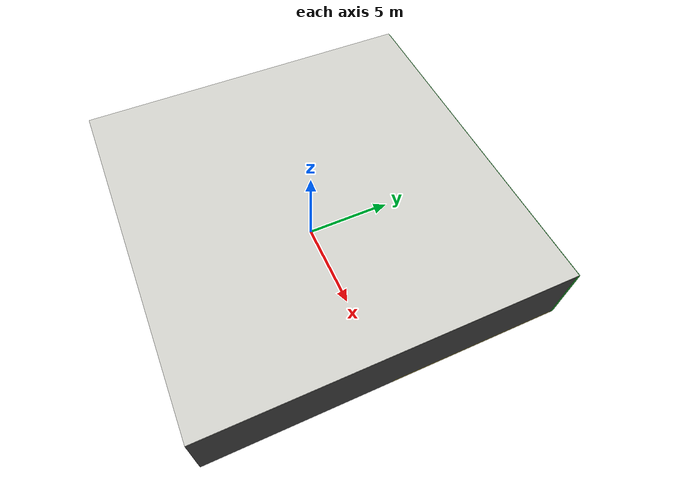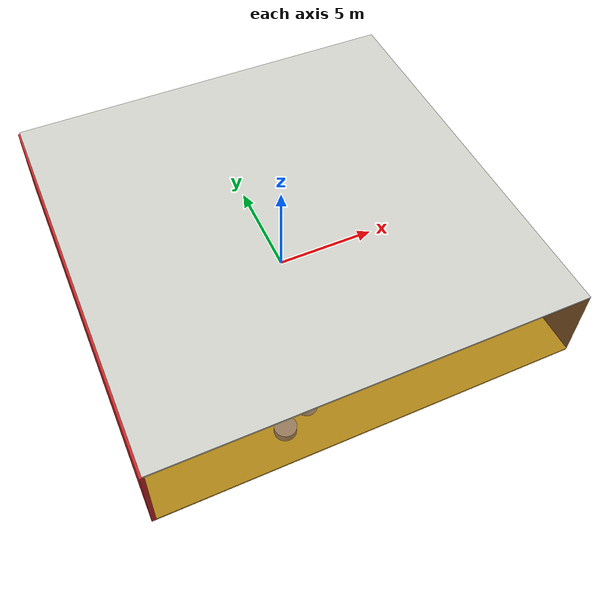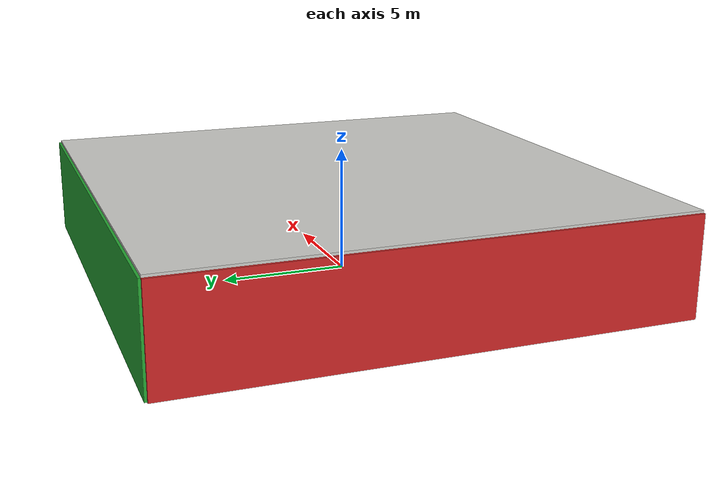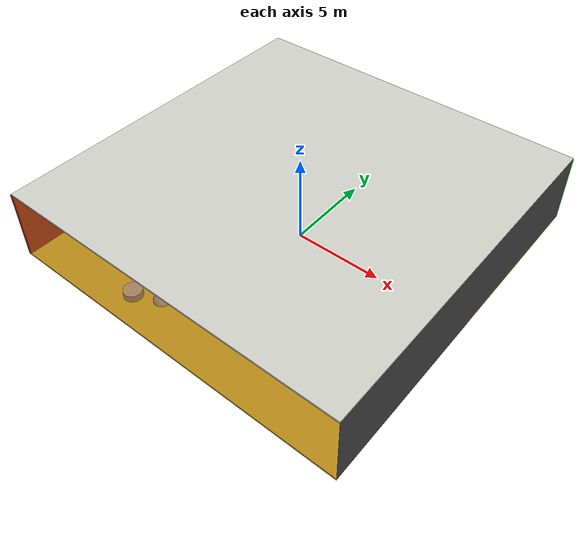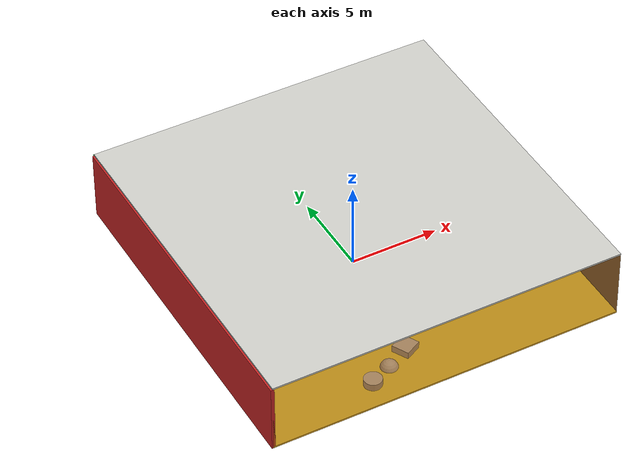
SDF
<sdf version="1.4">
 <world name="default">
  <physics type="ode">
   <max_step_size>0.001</max_step_size>
   <real_time_factor>1</real_time_factor>
   <real_time_update_rate>1000</real_time_update_rate>
   <gravity>0 0 -9.8</gravity>
  </physics>
  <scene><ambient>0.4 0.4 0.4 1</ambient><background>0.7 0.7 0.7 1</background><shadows>1</shadows></scene>
  <model name="Surrounding">
   <static>1</static>
   <link name="Ceiling">
    <collision name="Ceiling_Collision"><geometry><box><size>20 20 0.1</size></box></geometry></collision>
    <visual name="Ceiling_Visual">
     <geometry><box><size>20 20 0.1</size></box></geometry>
     <material>
      <script><uri>file://media/materials/scripts/gazebo.material</uri><name>Gazebo/CeilingTiled</name></script>
     </material>
    </visual>
    <pose>0 0 4.05 0 0 0</pose>
   </link>
   <link name="Wall_South">
    <collision name="Wall_South_Collision">
     <geometry><box><size>20 0 4</size></box></geometry>
     <pose>0 0 2 0 -0 0</pose>
    </collision>
    <visual name="Wall_South_Visual">
     <pose>0 0 2 0 -0 0</pose>
     <geometry><box><size>20 0 4</size></box></geometry>
     <material>
      <script>
       <uri>file://media/materials/scripts/gazebo.material</uri>
       <name>Gazebo/OrangeTransparent</name>
      </script>
     </material>
    </visual>
    <velocity_decay><linear>0</linear><angular>0</angular></velocity_decay>
    <pose>0 -10 0 0 -0 0</pose>
   </link>
   <link name="Wall_East">
    <collision name="Wall_21_Collision">
     <geometry><box><size>20 0 4</size></box></geometry>
     <pose>0 0 2 0 -0 0</pose>
    </collision>
    <visual name="Wall_21_Visual">
     <pose>0 0 2 0 -0 0</pose>
     <geometry><box><size>20 0 4</size></box></geometry>
     <material>
      <script><uri>file://media/materials/scripts/gazebo.material</uri><name>Gazebo/DarkGrey</name></script>
     </material>
    </visual>
    <velocity_decay><linear>0</linear><angular>0</angular></velocity_decay>
    <pose>10 0 0 0 -0 1.5708</pose>
   </link>
   <link name="Wall_North">
    <collision name="Wall_22_Collision">
     <geometry><box><size>20 0.2 4</size></box></geometry>
     <pose>0 0 2 0 -0 0</pose>
    </collision>
    <visual name="Wall_22_Visual">
     <pose>0 0 2 0 -0 0</pose>
     <geometry><box><size>20 0.2 4</size></box></geometry>
     <material>
      <script><uri>file://media/materials/scripts/gazebo.material</uri><name>Gazebo/Green</name></script>
     </material>
    </visual>
    <velocity_decay><linear>0</linear><angular>0</angular></velocity_decay>
    <pose>0 10 0 0 -0 0</pose>
   </link>
   <link name="Wall_West">
    <collision name="Wall_23_Collision">
     <geometry><box><size>20 0.2 4</size></box></geometry>
     <pose>0 0 2 0 -0 0</pose>
    </collision>
    <visual name="Wall_23_Visual">
     <pose>0 0 2 0 -0 0</pose>
     <geometry><box><size>20 0.2 4</size></box></geometry>
     <material>
      <script><uri>file://media/materials/scripts/gazebo.material</uri><name>Gazebo/RedBright</name></script>
     </material>
    </visual>
    <velocity_decay><linear>0</linear><angular>0</angular></velocity_decay>
    <pose>-10 0 0 0 0 -1.5708</pose>
   </link>
   <link name="Ground_link">
    <collision name="collision">
     <pose>0 0 .05 0 -0 0</pose>
     <geometry><box><size>20 20 0.1</size></box></geometry>
    </collision>
    <visual name="visual">
     <pose>0 0 .05 0 -0 0</pose>
     <geometry><box><size>20 20 0.1</size></box></geometry>
     <material>
      <script><uri>file://media/materials/scripts/gazebo.material</uri><name>Gazebo/ZincYellow</name></script>
     </material>
    </visual>
   </link>
   <static>1</static>
  </model>
  <spherical_coordinates>
   <surface_model>EARTH_WGS84</surface_model>
   <latitude_deg>0</latitude_deg>
   <longitude_deg>0</longitude_deg>
   <elevation>0</elevation>
   <heading_deg>0</heading_deg>
  </spherical_coordinates>
  <light name="lightball_0" type="diffuse">
   <diffuse>0.8 0.8 0.8 1</diffuse>
   <specular>0.2 0.2 0.2 1</specular>
   <attenuation>
    <range>100</range>
    <constant>0.7</constant>
    <linear>0.01</linear>
    <quadratic>0.001</quadratic>
   </attenuation>
   <direction>-0.5 0.1 -0.9</direction>
   <pose>-5.99456758493 9.43456994097 2.44293605843 0 0 0</pose>
  </light>
  <light name="lightball_1" type="diffuse">
   <diffuse>0.8 0.8 0.8 1</diffuse>
   <specular>0.2 0.2 0.2 1</specular>
   <attenuation>
    <range>100</range>
    <constant>0.7</constant>
    <linear>0.01</linear>
    <quadratic>0.001</quadratic>
   </attenuation>
   <direction>-0.5 0.1 -0.9</direction>
   <pose>2.81718145167 -9.98496576436 0.656304960184 0 0 0</pose>
  </light>
  <light name="lightball_2" type="diffuse">
   <diffuse>0.8 0.8 0.8 1</diffuse>
   <specular>0.2 0.2 0.2 1</specular>
   <attenuation>
    <range>100</range>
    <constant>0.7</constant>
    <linear>0.01</linear>
    <quadratic>0.001</quadratic>
   </attenuation>
   <direction>-0.5 0.1 -0.9</direction>
   <pose>6.85782696412 -2.85402570711 3.02795152014 0 0 0</pose>
  </light>
  <light name="lightball_3" type="diffuse">
   <diffuse>0.8 0.8 0.8 1</diffuse>
   <specular>0.2 0.2 0.2 1</specular>
   <attenuation>
    <range>100</range>
    <constant>0.7</constant>
    <linear>0.01</linear>
    <quadratic>0.001</quadratic>
   </attenuation>
   <direction>-0.5 0.1 -0.9</direction>
   <pose>1.79731572561 -9.539536128 1.95278455891 0 0 0</pose>
  </light>
  <light name="lightball_4" type="diffuse">
   <diffuse>0.8 0.8 0.8 1</diffuse>
   <specular>0.2 0.2 0.2 1</specular>
   <attenuation>
    <range>100</range>
    <constant>0.7</constant>
    <linear>0.01</linear>
    <quadratic>0.001</quadratic>
   </attenuation>
   <direction>-0.5 0.1 -0.9</direction>
   <pose>-9.67200077669 0.406630813082 2.610506101 0 0 0</pose>
  </light>
  <light name="lightball_5" type="diffuse">
   <diffuse>0.8 0.8 0.8 1</diffuse>
   <specular>0.2 0.2 0.2 1</specular>
   <attenuation>
    <range>100</range>
    <constant>0.7</constant>
    <linear>0.01</linear>
    <quadratic>0.001</quadratic>
   </attenuation>
   <direction>-0.5 0.1 -0.9</direction>
   <pose>-1.93806512051 -8.91826224066 0.979566521485 0 0 0</pose>
  </light>
  <light name="lightball_6" type="diffuse">
   <diffuse>0.8 0.8 0.8 1</diffuse>
   <specular>0.2 0.2 0.2 1</specular>
   <attenuation>
    <range>100</range>
    <constant>0.7</constant>
    <linear>0.01</linear>
    <quadratic>0.001</quadratic>
   </attenuation>
   <direction>-0.5 0.1 -0.9</direction>
   <pose>8.58724622062 1.69755441171 0.999561064031 0 0 0</pose>
  </light>
  <light name="lightball_7" type="diffuse">
   <diffuse>0.8 0.8 0.8 1</diffuse>
   <specular>0.2 0.2 0.2 1</specular>
   <attenuation>
    <range>100</range>
    <constant>0.7</constant>
    <linear>0.01</linear>
    <quadratic>0.001</quadratic>
   </attenuation>
   <direction>-0.5 0.1 -0.9</direction>
   <pose>4.21960185538 8.93150390956 3.75356831831 0 0 0</pose>
  </light>
  <light name="lightball_8" type="diffuse">
   <diffuse>0.8 0.8 0.8 1</diffuse>
   <specular>0.2 0.2 0.2 1</specular>
   <attenuation>
    <range>100</range>
    <constant>0.7</constant>
    <linear>0.01</linear>
    <quadratic>0.001</quadratic>
   </attenuation>
   <direction>-0.5 0.1 -0.9</direction>
   <pose>-6.08941763753 -2.18074983915 2.21621438269 0 0 0</pose>
  </light>
  <include>
   <uri>model://textured_shapes</uri>
   <pose>-2.25747567076 -7.85969020173 0 0 0 2.05008506911</pose>
  </include>
  <include>
   <uri>model://textured_shapes</uri>
   <pose>-2.60317135384 8.67824397085 0 0 0 1.53476150382</pose>
  </include>
  <include><uri>model://cabinet</uri><pose>2.64745060937 -2.06309692348 0 0 0 2.68390708758</pose></include>
  <include>
   <uri>model://construction_cone</uri>
   <pose>2.69768824346 6.38442214868 0 0 0 1.89850032793</pose>
  </include>
  <include><uri>model://cabinet</uri><pose>3.88142655487 -1.79514980547 0 0 0 1.8340908364</pose></include>
  <include><uri>model://table</uri><pose>7.12144999041 1.95660770383 0 0 0 1.66144183098</pose></include>
  <include>
   <uri>model://robocup_3Dsim_goal</uri>
   <pose>6.53037376682 5.00129815391 0 0 0 2.98307133922</pose>
  </include>
 </world>
</sdf>

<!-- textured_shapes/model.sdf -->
<sdf version="1.6">
  <model name="textured_shapes">
    <pose>0 0 0.5 0 0 0</pose>
    <link name="box">
      <pose>0 -1.5 0 0 0 0</pose>
      <collision name="collision">
        <geometry>
          <box>
            <size>1 1 1</size>
          </box>
        </geometry>
      </collision>
      <visual name="visual">
        <geometry>
          <box>
            <size>1 1 1</size>
          </box>
        </geometry>
        <material>
          <script>
            <uri>model://../model_source/models/textured_shapes/materials/scripts</uri>
            <uri>model://../model_source/models/textured_shapes/materials/textures</uri>
            <name>TexturedShape/Squares</name>
          </script>
        </material>
      </visual>
    </link>
    <link name="sphere">
      <collision name="collision">
        <geometry>
          <sphere>
            <radius>0.5</radius>
          </sphere>
        </geometry>
      </collision>
      <visual name="visual">
        <geometry>
          <sphere>
            <radius>0.5</radius>
          </sphere>
        </geometry>
        <material>
          <script>
            <uri>model://../model_source/models/textured_shapes/materials/scripts</uri>
            <uri>model://../model_source/models/textured_shapes/materials/textures</uri>
            <name>TexturedShape/Squares</name>
          </script>
        </material>
      </visual>
    </link>
    <link name="cylinder">
      <pose>0 1.5 0 0 0 0</pose>
      <collision name="collision">
        <geometry>
          <cylinder>
            <radius>0.5</radius>
            <length>1</length>
          </cylinder>
        </geometry>
      </collision>
      <visual name="visual">
        <geometry>
          <cylinder>
            <radius>0.5</radius>
            <length>1</length>
          </cylinder>
        </geometry>
        <material>
          <script>
            <uri>model://../model_source/models/textured_shapes/materials/scripts</uri>
            <uri>model://../model_source/models/textured_shapes/materials/textures</uri>
            <name>TexturedShape/Squares</name>
          </script>
        </material>
      </visual>
    </link>
  </model>
</sdf>

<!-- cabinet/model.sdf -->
<sdf version="1.5">
  <model name="cabinet">
    <static>true</static>
    <link name="cabinet_bottom_plate">
      <inertial>
        <pose>0 0 -1 0 0 0</pose>
        <inertia>
          <ixx>2.050000</ixx>
          <ixy>0</ixy>
          <ixz>0</ixz>
          <iyy>2.050000</iyy>
          <iyz>0</iyz>
          <izz>2.050000</izz>
        </inertia>
        <mass>25.000000</mass>
      </inertial>
      <collision name="cabinet_bottom_plate_geom">
        <pose>0 0 0.010000 0 0 0</pose>
        <geometry>
          <box>
            <size>0.450000 0.450000 0.020000</size>
          </box>
        </geometry>
      </collision>
      <visual name="cabinet_bottom_plate_geom_visual">
        <pose>0 0 0.010000 0 0 0</pose>
        <geometry>
          <box>
            <size>0.450000 0.450000 0.020000</size>
          </box>
        </geometry>
        <material>
          <script>
            <uri>model://media/materials/scripts/gazebo.material</uri>
            <name>Gazebo/Wood</name>
          </script>
        </material>
      </visual>
      <collision name="cabinet_bottom_plate_geom_cabinet_back_plate">
        <pose>0.235000 0 0.510000 0 0 0</pose>
        <geometry>
          <box>
            <size>0.020000 0.450000 1.020000</size>
          </box>
        </geometry>
      </collision>
      <visual name="cabinet_bottom_plate_geom_cabinet_back_plate_visual">
        <pose>0.235000 0 0.510000 0 0 0</pose>
        <geometry>
          <box>
            <size>0.020000 0.450000 1.020000</size>
          </box>
        </geometry>
        <material>
          <script>
            <uri>model://media/materials/scripts/gazebo.material</uri>
            <name>Gazebo/Wood</name>
          </script>
        </material>
      </visual>
      <collision name="cabinet_bottom_plate_geom_cabinet_left_plate">
        <pose>0 0.235000 0.510000 0 0 0</pose>
        <geometry>
          <box>
            <size>0.450000 0.020000 1.020000</size>
          </box>
        </geometry>
      </collision>
      <visual name="cabinet_bottom_plate_geom_cabinet_left_plate_visual">
        <pose>0 0.235000 0.510000 0 0 0</pose>
        <geometry>
          <box>
            <size>0.450000 0.020000 1.020000</size>
          </box>
        </geometry>
        <material>
          <script>
            <uri>model://media/materials/scripts/gazebo.material</uri>
            <name>Gazebo/Wood</name>
          </script>
        </material>
      </visual>
      <collision name="cabinet_bottom_plate_geom_cabinet_middle_plate">
        <pose>0 0 0.510000 0 0 0</pose>
        <geometry>
          <box>
            <size>0.450000 0.450000 0.020000</size>
          </box>
        </geometry>
      </collision>
      <visual name="cabinet_bottom_plate_geom_cabinet_middle_plate_visual">
        <pose>0 0 0.510000 0 0 0</pose>
        <geometry>
          <box>
            <size>0.450000 0.450000 0.020000</size>
          </box>
        </geometry>
        <material>
          <script>
            <uri>model://media/materials/scripts/gazebo.material</uri>
            <name>Gazebo/Wood</name>
          </script>
        </material>
      </visual>
      <collision name="cabinet_bottom_plate_geom_cabinet_right_plate">
        <pose>0 -0.235000 0.510000 0 0 0</pose>
        <geometry>
          <box>
            <size>0.450000 0.020000 1.020000</size>
          </box>
        </geometry>
      </collision>
      <visual name="cabinet_bottom_plate_geom_cabinet_right_plate_visual">
        <pose>0 -0.235000 0.510000 0 0 0</pose>
        <geometry>
          <box>
            <size>0.450000 0.020000 1.020000</size>
          </box>
        </geometry>
        <material>
          <script>
            <uri>model://media/materials/scripts/gazebo.material</uri>
            <name>Gazebo/Wood</name>
          </script>
        </material>
      </visual>
      <collision name="cabinet_bottom_plate_geom_cabinet_top_plate">
        <pose>0 0 1.010000 0 0 0</pose>
        <geometry>
          <box>
            <size>0.450000 0.450000 0.020000</size>
          </box>
        </geometry>
      </collision>
      <visual name="cabinet_bottom_plate_geom_cabinet_top_plate_visual">
        <pose>0 0 1.010000 0 0 0</pose>
        <geometry>
          <box>
            <size>0.450000 0.450000 0.020000</size>
          </box>
        </geometry>
        <material>
          <script>
            <uri>model://media/materials/scripts/gazebo.material</uri>
            <name>Gazebo/Wood</name>
          </script>
        </material>
      </visual>
    </link>
  </model>
</sdf>

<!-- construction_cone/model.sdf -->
<sdf version="1.5">
  <model name="Construction Cone">
    <link name="link">
      <collision name="collision">
        <geometry>
          <mesh>
            <scale>10 10 10</scale>
            <uri>file://isr-testbed/construction_cone/meshes/construction_cone.dae</uri>
          </mesh>
        </geometry>
      </collision>
      <visual name="visual">
        <geometry>
          <mesh>
            <scale>10 10 10</scale>
            <uri>file://isr-testbed/construction_cone/meshes/construction_cone.dae</uri>
          </mesh>
        </geometry>
      </visual>
    </link>
  </model>
</sdf>

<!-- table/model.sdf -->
<sdf version="1.5">
  <model name="table">
    <static>true</static>
    <link name="link">
      <collision name="surface">
        <pose>0 0 1.0 0 0 0</pose>
        <geometry>
          <box>
            <size>1.5 0.8 0.03</size>
          </box>
        </geometry>
        <surface>
          <friction>
            <ode>
              <mu>0.6</mu>
              <mu2>0.6</mu2>
            </ode>
          </friction>
        </surface>
      </collision>
      <visual name="visual1">
        <pose>0 0 1.0 0 0 0</pose>
        <geometry>
          <box>
            <size>1.5 0.8 0.03</size>
          </box>
        </geometry>
        <material>
          <script>
            <uri>model://media/materials/scripts/gazebo.material</uri>
            <name>Gazebo/Wood</name>
          </script>
        </material>
      </visual>
      <collision name="front_left_leg">
        <pose>0.68 0.38 0.5 0 0 0</pose>
        <geometry>
          <cylinder>
            <radius>0.02</radius>
            <length>1.0</length>
          </cylinder>
        </geometry>
      </collision>
      <visual name="front_left_leg">
        <pose>0.68 0.38 0.5 0 0 0</pose>
        <geometry>
          <cylinder>
            <radius>0.02</radius>
            <length>1.0</length>
          </cylinder>
        </geometry>
        <material>
          <script>
            <uri>model://media/materials/scripts/gazebo.material</uri>
            <name>Gazebo/Grey</name>
          </script>
        </material>
      </visual>
      <collision name="front_right_leg">
        <pose>0.68 -0.38 0.5 0 0 0</pose>
        <geometry>
          <cylinder>
            <radius>0.02</radius>
            <length>1.0</length>
          </cylinder>
        </geometry>
      </collision>
      <visual name="front_right_leg">
        <pose>0.68 -0.38 0.5 0 0 0</pose>
        <geometry>
          <cylinder>
            <radius>0.02</radius>
            <length>1.0</length>
          </cylinder>
        </geometry>
        <material>
          <script>
            <uri>model://media/materials/scripts/gazebo.material</uri>
            <name>Gazebo/Grey</name>
          </script>
        </material>
      </visual>
      <collision name="back_right_leg">
        <pose>-0.68 -0.38 0.5 0 0 0</pose>
        <geometry>
          <cylinder>
            <radius>0.02</radius>
            <length>1.0</length>
          </cylinder>
        </geometry>
      </collision>
      <visual name="back_right_leg">
        <pose>-0.68 -0.38 0.5 0 0 0</pose>
        <geometry>
          <cylinder>
            <radius>0.02</radius>
            <length>1.0</length>
          </cylinder>
        </geometry>
        <material>
          <script>
            <uri>model://media/materials/scripts/gazebo.material</uri>
            <name>Gazebo/Grey</name>
          </script>
        </material>
      </visual>
      <collision name="back_left_leg">
        <pose>-0.68 0.38 0.5 0 0 0</pose>
        <geometry>
          <cylinder>
            <radius>0.02</radius>
            <length>1.0</length>
          </cylinder>
        </geometry>
      </collision>
      <visual name="back_left_leg">
        <pose>-0.68 0.38 0.5 0 0 0</pose>
        <geometry>
          <cylinder>
            <radius>0.02</radius>
            <length>1.0</length>
          </cylinder>
        </geometry>
        <material>
          <script>
            <uri>model://media/materials/scripts/gazebo.material</uri>
            <name>Gazebo/Grey</name>
          </script>
        </material>
      </visual>
    </link>
  </model>
</sdf>

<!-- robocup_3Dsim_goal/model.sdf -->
<sdf version="1.5">
  <model name="robocup_3d_goal">
    <static>true</static>
    <link name="left_post">
      <pose>0 1.05 0.45 0 0 0</pose>
      <collision name="collision">
        <geometry>
          <cylinder>
            <radius>0.05</radius>
            <length>0.9</length>
          </cylinder>
        </geometry>
      </collision>
      <visual name="visual">
        <geometry>
          <cylinder>
            <radius>0.05</radius>
            <length>0.9</length>
          </cylinder>
        </geometry>
        <material>
          <script>
            <uri>file://media/materials/scripts/gazebo.material</uri>
            <name>Gazebo/ZincYellow</name>
          </script>
        </material>
      </visual>
    </link>
    <link name="left_support_horiz_lower">
      <pose>0.30 1.05 0.01 0 0 0</pose>
      <collision name="collision">
        <geometry>
          <box>
            <size>0.50 0.02 0.02</size>
          </box>
        </geometry>
      </collision>
      <visual name="visual">
        <geometry>
          <box>
            <size>0.50 0.02 0.02</size>
          </box>
        </geometry>
        <material>
          <script>
            <uri>file://media/materials/scripts/gazebo.material</uri>
            <name>Gazebo/White</name>
          </script>
        </material>
      </visual>
    </link>
    <link name="left_support_horiz_upper">
      <pose>0.30 1.05 0.79 0 0 0</pose>
      <collision name="collision">
        <geometry>
          <box>
            <size>0.50 0.02 0.02</size>
          </box>
        </geometry>
      </collision>
      <visual name="visual">
        <geometry>
          <box>
            <size>0.50 0.02 0.02</size>
          </box>
        </geometry>
        <material>
          <script>
            <uri>file://media/materials/scripts/gazebo.material</uri>
            <name>Gazebo/White</name>
          </script>
        </material>
      </visual>
    </link>
    <link name="left_support_vertical">
      <pose>0.56 1.05 0.4 0 1.5708 0</pose>
      <collision name="collision">
        <geometry>
          <box>
            <size>0.80 0.02 0.02</size>
          </box>
        </geometry>
      </collision>
      <visual name="visual">
        <geometry>
          <box>
            <size>0.80 0.02 0.02</size>
          </box>
        </geometry>
        <material>
          <script>
            <uri>file://media/materials/scripts/gazebo.material</uri>
            <name>Gazebo/White</name>
          </script>
        </material>
      </visual>
    </link>
    <link name="right_support_horiz_lower">
      <pose>0.30 -1.05 0.01 0 0 0</pose>
      <collision name="collision">
        <geometry>
          <box>
            <size>0.50 0.02 0.02</size>
          </box>
        </geometry>
      </collision>
      <visual name="visual">
        <geometry>
          <box>
            <size>0.50 0.02 0.02</size>
          </box>
        </geometry>
        <material>
          <script>
            <uri>file://media/materials/scripts/gazebo.material</uri>
            <name>Gazebo/White</name>
          </script>
        </material>
      </visual>
    </link>
    <link name="right_support_horiz_upper">
      <pose>0.30 -1.05 0.79 0 0 0</pose>
      <collision name="collision">
        <geometry>
          <box>
            <size>0.50 0.02 0.02</size>
          </box>
        </geometry>
      </collision>
      <visual name="visual">
        <geometry>
          <box>
            <size>0.50 0.02 0.02</size>
          </box>
        </geometry>
        <material>
          <script>
            <uri>file://media/materials/scripts/gazebo.material</uri>
            <name>Gazebo/White</name>
          </script>
        </material>
      </visual>
    </link>
    <link name="right_support_vertical">
      <pose>0.56 -1.05 0.4 0 1.5708 0</pose>
      <collision name="collision">
        <geometry>
          <box>
            <size>0.80 0.02 0.02</size>
          </box>
        </geometry>
      </collision>
      <visual name="visual">
        <geometry>
          <box>
            <size>0.80 0.02 0.02</size>
          </box>
        </geometry>
        <material>
          <script>
            <uri>file://media/materials/scripts/gazebo.material</uri>
            <name>Gazebo/White</name>
          </script>
        </material>
      </visual>
    </link>
    <link name="center_support_horiz_lower">
      <pose>0.56 0 0.01 0 1.5708 0</pose>
      <collision name="collision">
        <geometry>
          <box>
            <size>0.02 2.08 0.02</size>
          </box>
        </geometry>
      </collision>
      <visual name="visual">
        <geometry>
          <box>
            <size>0.02 2.08 0.02</size>
          </box>
        </geometry>
        <material>
          <script>
            <uri>file://media/materials/scripts/gazebo.material</uri>
            <name>Gazebo/White</name>
          </script>
        </material>
      </visual>
    </link>
    <link name="center_support_horiz_upper">
      <pose>0.56 0 0.79 0 1.5708 0</pose>
      <collision name="collision">
        <geometry>
          <box>
            <size>0.02 2.08 0.02</size>
          </box>
        </geometry>
      </collision>
      <visual name="visual">
        <geometry>
          <box>
            <size>0.02 2.08 0.02</size>
          </box>
        </geometry>
        <material>
          <script>
            <uri>file://media/materials/scripts/gazebo.material</uri>
            <name>Gazebo/White</name>
          </script>
        </material>
      </visual>
    </link>
    <link name="right_post">
      <pose>0 -1.05 0.45 0 0 0</pose>
      <collision name="collision">
        <geometry>
          <cylinder>
            <radius>0.05</radius>
            <length>0.9</length>
          </cylinder>
        </geometry>
      </collision>
      <visual name="visual">
        <geometry>
          <cylinder>
            <radius>0.05</radius>
            <length>0.9</length>
          </cylinder>
        </geometry>
        <material>
          <script>
            <uri>file://media/materials/scripts/gazebo.material</uri>
            <name>Gazebo/ZincYellow</name>
          </script>
        </material>
      </visual>
    </link>
    <link name="crossbar">
      <pose>0 0 0.85 1.57 1.57 0</pose>
      <collision name="collision">
        <geometry>
          <cylinder>
            <radius>0.05</radius>
            <length>2.0</length>
          </cylinder>
        </geometry>
      </collision>
      <visual name="visual">
        <geometry>
          <cylinder>
            <radius>0.05</radius>
            <length>2.0</length>
          </cylinder>
        </geometry>
        <material>
          <script>
            <uri>file://media/materials/scripts/gazebo.material</uri>
            <name>Gazebo/ZincYellow</name>
          </script>
        </material>
      </visual>
    </link>
    <link name="center_net">
      <pose>0.56 0 0.40 0 0 0</pose>
      <collision name="collision">
        <geometry>
          <box>
            <size>0.01 2.1 0.80</size>
          </box>
        </geometry>
      </collision>
      <visual name="visual">
        <geometry>
          <box>
            <size>0.01 2.1 0.80</size>
          </box>
        </geometry>
        <material>
          <script>
            <uri>model://../model_source/models/robocup09_spl_field/materials/scripts/</uri>
            <uri>model://../model_source/models/robocup09_spl_field/materials/textures/</uri>
            <name>RoboCup/Net</name>
          </script>
        </material>
      </visual>
    </link>
    <link name="left_net">
      <pose>0.30 1.05 0.40 0 0 0</pose>
      <collision name="collision">
        <geometry>
          <box>
            <size>0.50 0.01 0.76</size>
          </box>
        </geometry>
      </collision>
      <visual name="visual">
        <geometry>
          <box>
            <size>0.50 0.01 0.76</size>
          </box>
        </geometry>
        <material>
          <script>
            <uri>model://../model_source/models/robocup09_spl_field/materials/scripts/</uri>
            <uri>model://../model_source/models/robocup09_spl_field/materials/textures/</uri>
            <name>RoboCup/Net</name>
          </script>
        </material>
      </visual>
    </link>
    <link name="right_net">
      <pose>0.30 -1.05 0.40 0 0 0</pose>
      <collision name="collision">
        <geometry>
          <box>
            <size>0.50 0.01 0.76</size>
          </box>
        </geometry>
      </collision>
      <visual name="visual">
        <geometry>
          <box>
            <size>0.50 0.01 0.76</size>
          </box>
        </geometry>
        <material>
          <script>
            <uri>model://../model_source/models/robocup09_spl_field/materials/scripts/</uri>
            <uri>model://../model_source/models/robocup09_spl_field/materials/textures/</uri>
            <name>RoboCup/Net</name>
          </script>
        </material>
      </visual>
    </link>
  </model>
</sdf>
